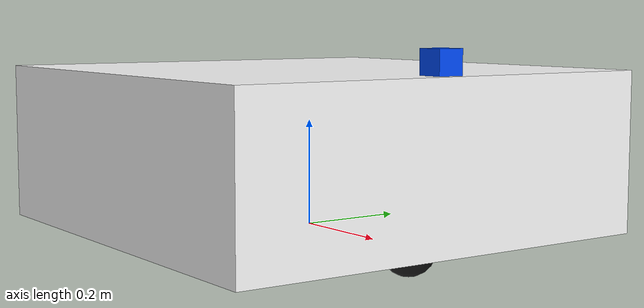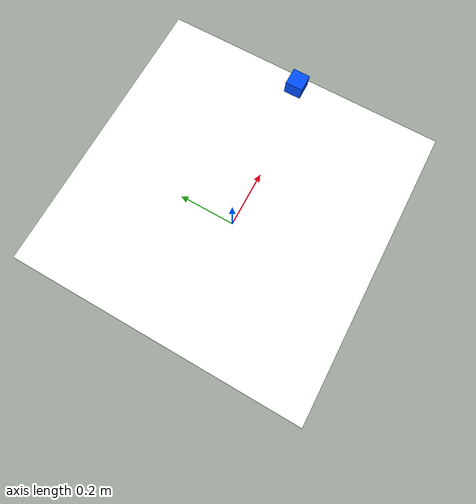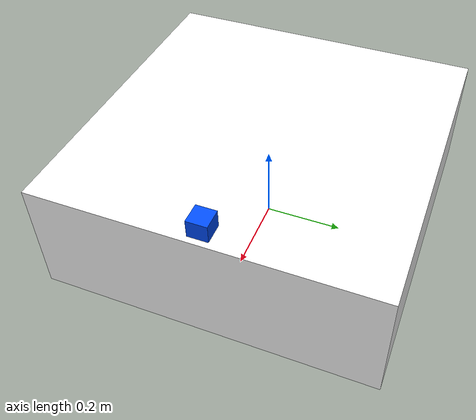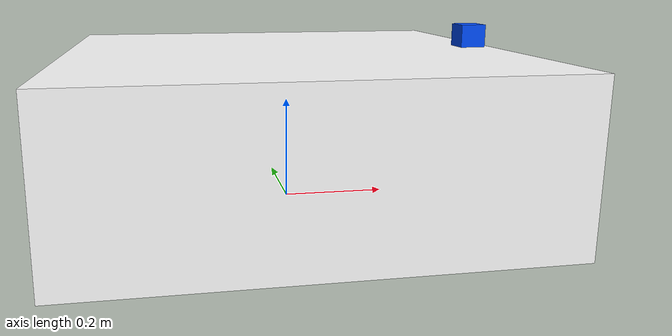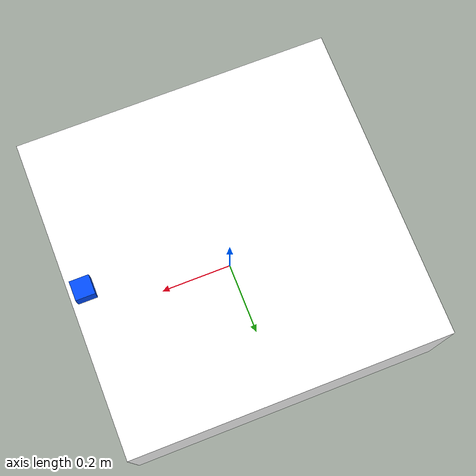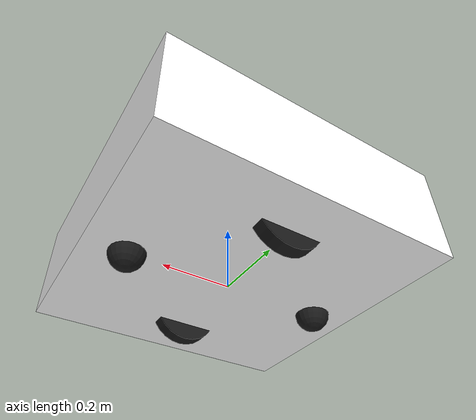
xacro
<?xml version="1.0"?>
<robot name="mobile_robot" xmlns:xacro="http://www.ros.org/wiki/xacro">

<!-- ================= MATERIALS ================= -->
  <material name="white">
    <color rgba="1 1 1 1"/>
  </material>

  <material name="black">
    <color rgba="0.1 0.1 0.1 1"/>
  </material>

  <material name="blue">
    <color rgba="0 0.3 1 1"/>
  </material>

  <!-- ================= BASE ================= -->
  <link name="base_footprint"/>

  <link name="base_link">

    <visual>
      <origin xyz="0 0 0"/>
      <geometry>
        <box size="0.84 0.84 0.30"/>
      </geometry>
      <material name="white"/>
    </visual>

    <collision>
      <origin xyz="0 0 0"/>
      <geometry>
        <box size="0.84 0.84 0.30"/>
      </geometry>
    </collision>

    <inertial>
      <mass value="20.0"/>
      <origin xyz="0 0 0"/>
      <inertia
        ixx="1.0" ixy="0.0" ixz="0.0"
        iyy="1.0" iyz="0.0"
        izz="1.0"/>
    </inertial>

  </link>

  <!-- ================= CAMERA ================= -->
  <link name="camera_link">
    <visual>
      <geometry>
        <box size="0.05 0.05 0.05"/>
      </geometry>
      <material name="blue"/>
    </visual>

    <inertial>
      <mass value="0.2"/>
      <inertia ixx="0.001" ixy="0" ixz="0"
               iyy="0.001" iyz="0"
               izz="0.001"/>
    </inertial>
  </link>

  <!-- ================= WHEELS ================= -->
  <link name="right_wheel_link">
    <visual>
      <geometry>
        <cylinder radius="0.10" length="0.04"/>
      </geometry>
      <origin rpy="1.5707 0 0"/>
      <material name="black"/>
    </visual>

    <collision>
      <geometry>
        <cylinder radius="0.10" length="0.04"/>
      </geometry>
      <origin rpy="1.5707 0 0"/>
    </collision>

    <inertial>
      <mass value="1.0"/>
      <inertia ixx="0.01" ixy="0" ixz="0"
               iyy="0.01" iyz="0"
               izz="0.01"/>
    </inertial>
  </link>

  <link name="left_wheel_link">
    <visual>
      <geometry>
        <cylinder radius="0.10" length="0.04"/>
      </geometry>
      <origin rpy="1.5707 0 0"/>
      <material name="black"/>
    </visual>

    <collision>
      <geometry>
        <cylinder radius="0.10" length="0.04"/>
      </geometry>
      <origin rpy="1.5707 0 0"/>
    </collision>

    <inertial>
      <mass value="1.0"/>
      <inertia ixx="0.01" ixy="0" ixz="0"
               iyy="0.01" iyz="0"
               izz="0.01"/>
    </inertial>
  </link>

  <!-- ================= CASTERS ================= -->
  <link name="caster_front_wheel_link">
    <visual>
      <geometry>
        <sphere radius="0.05"/>
      </geometry>
      <material name="black"/>
    </visual>

    <collision>
      <geometry>
        <sphere radius="0.05"/>
      </geometry>
    </collision>

    <inertial>
      <mass value="0.3"/>
      <inertia ixx="0.001" ixy="0" ixz="0"
               iyy="0.001" iyz="0"
               izz="0.001"/>
    </inertial>
  </link>

  <link name="caster_back_wheel_link">
    <visual>
      <geometry>
        <sphere radius="0.05"/>
      </geometry>
      <material name="black"/>
    </visual>

    <collision>
      <geometry>
        <sphere radius="0.05"/>
      </geometry>
    </collision>

    <inertial>
      <mass value="0.3"/>
      <inertia ixx="0.001" ixy="0" ixz="0"
               iyy="0.001" iyz="0"
               izz="0.001"/>
    </inertial>
  </link>

  <!-- ================= JOINTS ================= -->

  <joint name="base_joint" type="fixed">
    <parent link="base_footprint"/>
    <child link="base_link"/>
    <origin xyz="0 0 0.15"/>
  </joint>

  <joint name="camera_joint" type="fixed">
    <parent link="base_link"/>
    <child link="camera_link"/>
    <origin xyz="0.38 0 0.17"/>
  </joint>

  <joint name="left_wheel_joint" type="continuous">
    <parent link="base_link"/>
    <child link="left_wheel_link"/>
    <origin xyz="0 0.27 -0.10"/>
    <axis xyz="0 1 0"/>
  </joint>

  <joint name="right_wheel_joint" type="continuous">
    <parent link="base_link"/>
    <child link="right_wheel_link"/>
    <origin xyz="0 -0.27 -0.10"/>
    <axis xyz="0 1 0"/>
  </joint>

  <joint name="caster_front_joint" type="fixed">
    <parent link="base_link"/>
    <child link="caster_front_wheel_link"/>
    <origin xyz="0.30 0 -0.15"/>
  </joint>

  <joint name="caster_back_joint" type="fixed">
    <parent link="base_link"/>
    <child link="caster_back_wheel_link"/>
    <origin xyz="-0.30 0 -0.15"/>
  </joint>

</robot>
